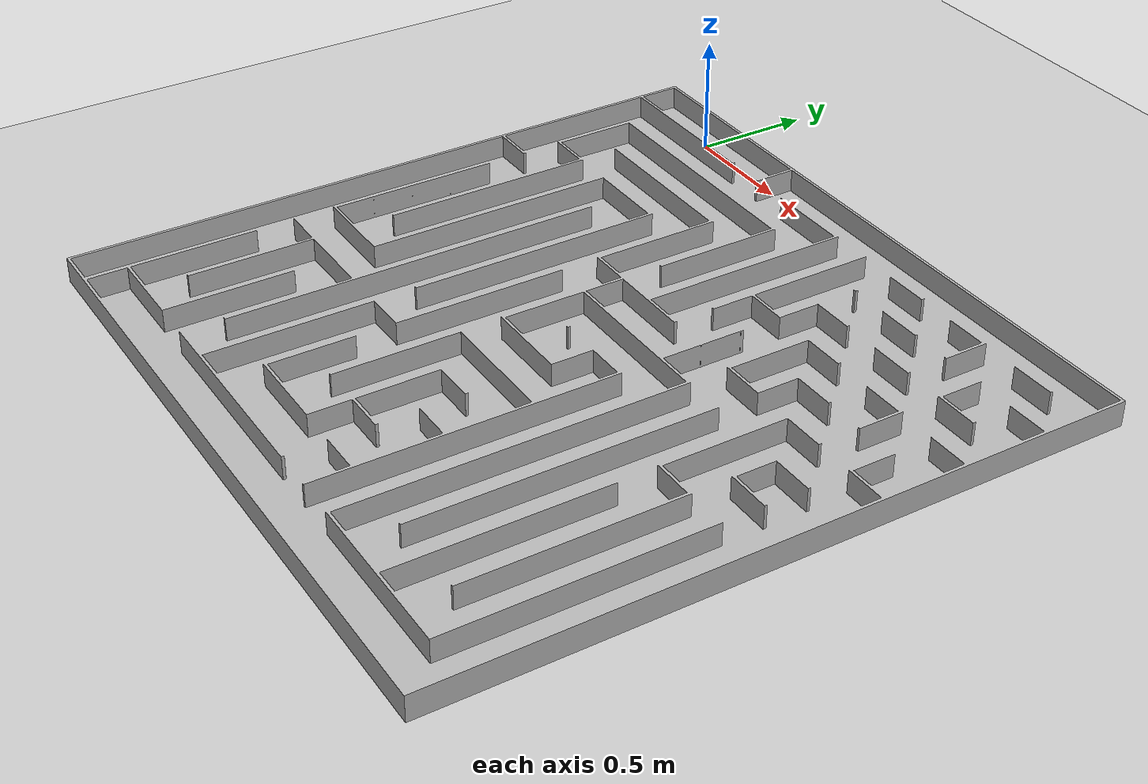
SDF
<?xml version="1.0"?>
<sdf version="1.4">
    <world name="default">
        <include>
            <uri>model://ground_plane</uri>
        </include>
        <include>
            <uri>model://sun</uri>
        </include>
        <model name="my_mesh">
            <pose>-0.3 0 0  0 0 -1.57</pose>
            <static>true</static>
            <link name="body">
                <visual name="visual">
                    <geometry>
                        <mesh>
                            <scale>0.001 0.001 0.001</scale>
                            <uri>model://maze.stl</uri>
                        </mesh>
                    </geometry>
                </visual>

                <collision name="collision">
                    <geometry>
                        <mesh>
                            <scale>0.001 0.001 0.001</scale>
                            <uri>model://maze.stl</uri>
                        </mesh>
                    </geometry>
                </collision>
            </link>

            <gazebo reference="body">
                <material>Gazebo/White</material>
            </gazebo>
        </model>
    </world>
</sdf>
